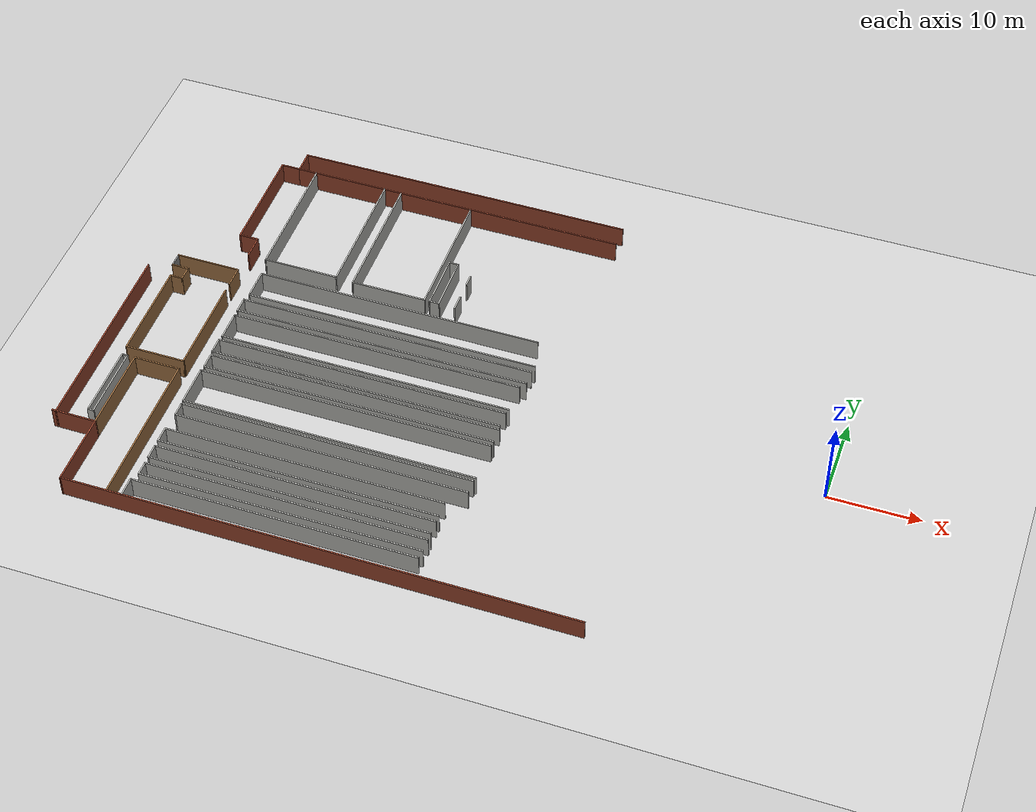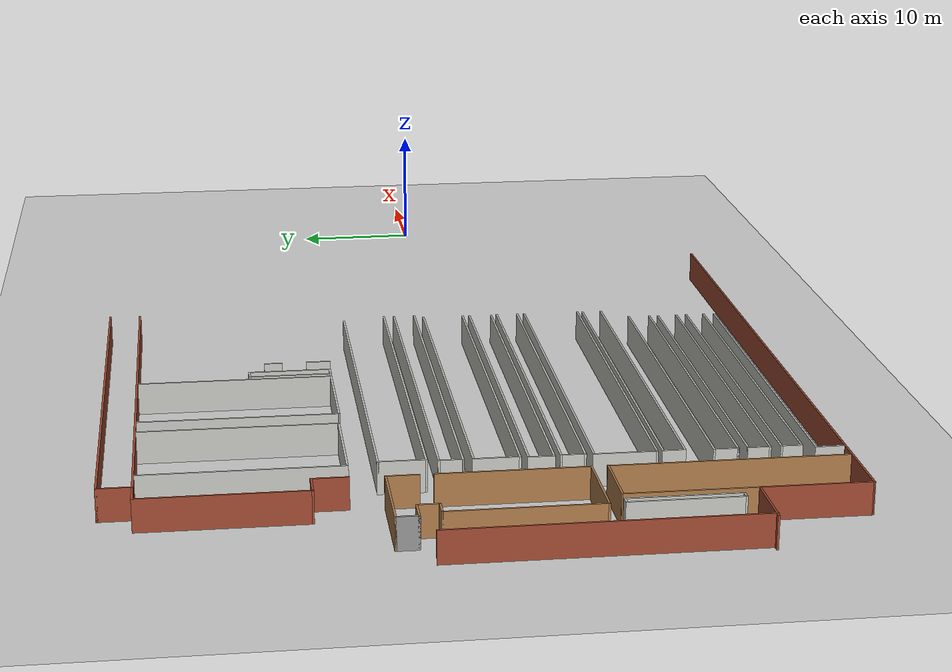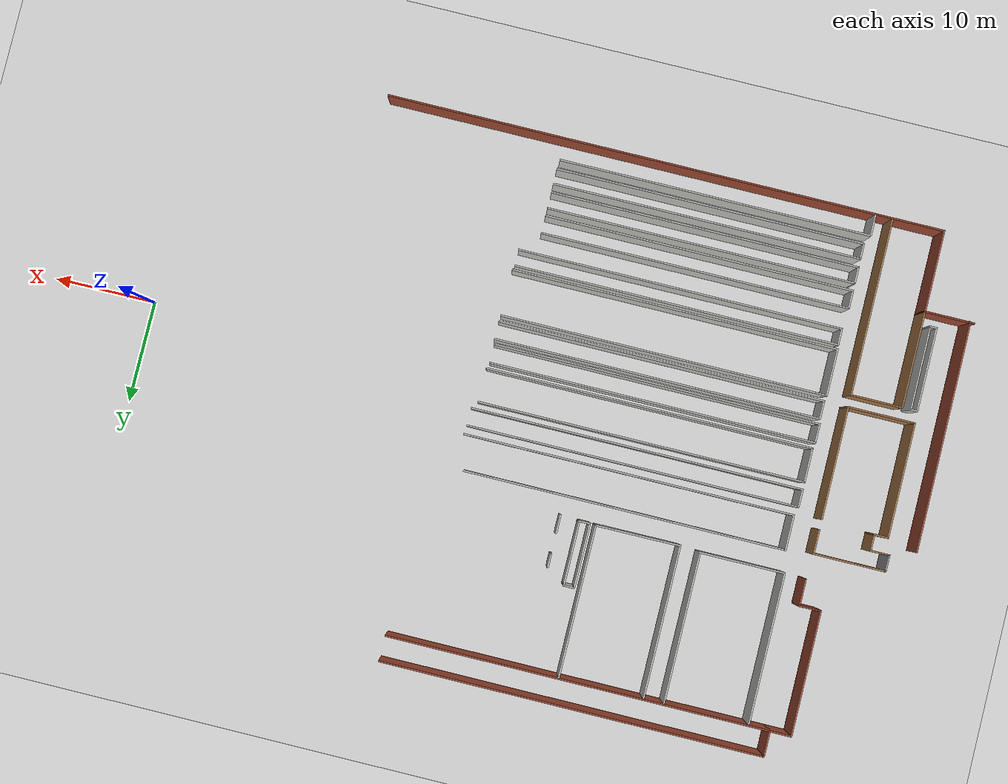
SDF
<sdf version="1.6">
 <world name="default">
  <model name="ground_plane">
   <static>1</static>
   <link name="link">
    <collision name="collision">
     <geometry><plane><normal>0 0 1</normal><size>100 100</size></plane></geometry>
     <surface><friction><ode><mu>100</mu><mu2>50</mu2></ode></friction></surface>
    </collision>
    <visual name="visual">
     <cast_shadows>0</cast_shadows>
     <geometry><plane><normal>0 0 1</normal><size>100 100</size></plane></geometry>
     <material>
      <script><uri>file://media/materials/scripts/gazebo.material</uri><name>Gazebo/Grey</name></script>
     </material>
    </visual>
   </link>
  </model>
  <model name="jeonju-2023">
   <pose>-5.65351 1.61412 0 0 -0 0</pose>
   <link name="Wall_100">
    <collision name="Wall_100_Collision">
     <geometry><box><size>12.429 0.15 2.5</size></box></geometry>
     <pose>0 0 1.25 0 -0 0</pose>
    </collision>
    <visual name="Wall_100_Visual">
     <pose>0 0 1.25 0 -0 0</pose>
     <geometry><box><size>12.429 0.15 2.5</size></box></geometry>
     <material>
      <script><uri>file://media/materials/scripts/gazebo.material</uri><name>Gazebo/Bricks</name></script>
      <ambient>1 1 1 1</ambient>
     </material>
    </visual>
    <pose>-64.7065 18.131 0 0 -0 1.5708</pose>
   </link>
   <link name="Wall_101">
    <collision name="Wall_101_Collision">
     <geometry><box><size>2.25 0.15 2.5</size></box></geometry>
     <pose>0 0 1.25 0 -0 0</pose>
    </collision>
    <visual name="Wall_101_Visual">
     <pose>0 0 1.25 0 -0 0</pose>
     <geometry><box><size>2.25 0.15 2.5</size></box></geometry>
     <material>
      <script><uri>file://media/materials/scripts/gazebo.material</uri><name>Gazebo/Bricks</name></script>
      <ambient>1 1 1 1</ambient>
     </material>
    </visual>
    <pose>-63.6565 24.2705 0 0 -0 0</pose>
   </link>
   <link name="Wall_102">
    <collision name="Wall_102_Collision">
     <geometry><box><size>2.65 0.15 2.5</size></box></geometry>
     <pose>0 0 1.25 0 -0 0</pose>
    </collision>
    <visual name="Wall_102_Visual">
     <pose>0 0 1.25 0 -0 0</pose>
     <geometry><box><size>2.65 0.15 2.5</size></box></geometry>
     <material>
      <script><uri>file://media/materials/scripts/gazebo.material</uri><name>Gazebo/Bricks</name></script>
      <ambient>1 1 1 1</ambient>
     </material>
    </visual>
    <pose>-62.6065 25.5205 0 0 -0 1.5708</pose>
   </link>
   <link name="Wall_103">
    <collision name="Wall_103_Collision">
     <geometry><box><size>38.041 0.15 2.5</size></box></geometry>
     <pose>0 0 1.25 0 -0 0</pose>
    </collision>
    <visual name="Wall_103_Visual">
     <pose>0 0 1.25 0 -0 0</pose>
     <geometry><box><size>38.041 0.15 2.5</size></box></geometry>
     <material>
      <script><uri>file://media/materials/scripts/gazebo.material</uri><name>Gazebo/Bricks</name></script>
      <ambient>1 1 1 1</ambient>
     </material>
    </visual>
    <pose>-43.661 26.7705 0 0 -0 0</pose>
   </link>
   <link name="Wall_137">
    <collision name="Wall_137_Collision">
     <geometry><box><size>7.25 0.15 2.5</size></box></geometry>
     <pose>0 0 1.25 0 -0 0</pose>
    </collision>
    <visual name="Wall_137_Visual">
     <pose>0 0 1.25 0 -0 0</pose>
     <geometry><box><size>7.25 0.15 2.5</size></box></geometry>
     <material>
      <script><uri>file://media/materials/scripts/gazebo.material</uri><name>Gazebo/Wood</name></script>
      <ambient>1 1 1 1</ambient>
     </material>
    </visual>
    <pose>-66.3255 6.8155 0 0 -0 3.14159</pose>
   </link>
   <link name="Wall_138">
    <collision name="Wall_138_Collision">
     <geometry><box><size>1.75 0.15 2.5</size></box></geometry>
     <pose>0 0 1.25 0 -0 0</pose>
    </collision>
    <visual name="Wall_138_Visual">
     <pose>0 0 1.25 0 -0 0</pose>
     <geometry><box><size>1.75 0.15 2.5</size></box></geometry>
     <material>
      <script><uri>file://media/materials/scripts/gazebo.material</uri><name>Gazebo/Grey</name></script>
      <ambient>1 1 1 1</ambient>
     </material>
    </visual>
    <pose>-69.8755 6.0155 0 0 0 -1.5708</pose>
   </link>
   <link name="Wall_139">
    <collision name="Wall_139_Collision">
     <geometry><box><size>2 0.15 2.5</size></box></geometry>
     <pose>0 0 1.25 0 -0 0</pose>
    </collision>
    <visual name="Wall_139_Visual">
     <pose>0 0 1.25 0 -0 0</pose>
     <geometry><box><size>2 0.15 2.5</size></box></geometry>
     <material>
      <script><uri>file://media/materials/scripts/gazebo.material</uri><name>Gazebo/Wood</name></script>
      <ambient>1 1 1 1</ambient>
     </material>
    </visual>
    <pose>-68.9505 5.2155 0 0 -0 0</pose>
   </link>
   <link name="Wall_140">
    <collision name="Wall_140_Collision">
     <geometry><box><size>1.75 0.15 2.5</size></box></geometry>
     <pose>0 0 1.25 0 -0 0</pose>
    </collision>
    <visual name="Wall_140_Visual">
     <pose>0 0 1.25 0 -0 0</pose>
     <geometry><box><size>1.75 0.15 2.5</size></box></geometry>
     <material>
      <script><uri>file://media/materials/scripts/gazebo.material</uri><name>Gazebo/Wood</name></script>
      <ambient>1 1 1 1</ambient>
     </material>
    </visual>
    <pose>-68.0255 4.4155 0 0 0 -1.5708</pose>
   </link>
   <link name="Wall_141">
    <collision name="Wall_141_Collision">
     <geometry><box><size>1.508 0.15 2.5</size></box></geometry>
     <pose>0 0 1.25 0 -0 0</pose>
    </collision>
    <visual name="Wall_141_Visual">
     <pose>0 0 1.25 0 -0 0</pose>
     <geometry><box><size>1.508 0.15 2.5</size></box></geometry>
     <material>
      <script><uri>file://media/materials/scripts/gazebo.material</uri><name>Gazebo/Wood</name></script>
      <ambient>1 1 1 1</ambient>
     </material>
    </visual>
    <pose>-68.7045 3.6155 0 0 -0 3.14159</pose>
   </link>
   <link name="Wall_142">
    <collision name="Wall_142_Collision">
     <geometry><box><size>11.5 0.15 2.5</size></box></geometry>
     <pose>0 0 1.25 0 -0 0</pose>
    </collision>
    <visual name="Wall_142_Visual">
     <pose>0 0 1.25 0 -0 0</pose>
     <geometry><box><size>11.5 0.15 2.5</size></box></geometry>
     <material>
      <script><uri>file://media/materials/scripts/gazebo.material</uri><name>Gazebo/Wood</name></script>
      <ambient>1 1 1 1</ambient>
     </material>
    </visual>
    <pose>-69.379 -2.0595 0 0 0 -1.57</pose>
   </link>
   <link name="Wall_143">
    <collision name="Wall_143_Collision">
     <geometry><box><size>6.75 0.15 2.5</size></box></geometry>
     <pose>0 0 1.25 0 -0 0</pose>
    </collision>
    <visual name="Wall_143_Visual">
     <pose>0 0 1.25 0 -0 0</pose>
     <geometry><box><size>6.75 0.15 2.5</size></box></geometry>
     <material>
      <script><uri>file://media/materials/scripts/gazebo.material</uri><name>Gazebo/Wood</name></script>
      <ambient>1 1 1 1</ambient>
     </material>
    </visual>
    <pose>-66.075 -7.7345 0 0 -0 0</pose>
   </link>
   <link name="Wall_144">
    <collision name="Wall_144_Collision">
     <geometry><box><size>11.25 0.15 2.5</size></box></geometry>
     <pose>0 0 1.25 0 -0 0</pose>
    </collision>
    <visual name="Wall_144_Visual">
     <pose>0 0 1.25 0 -0 0</pose>
     <geometry><box><size>11.25 0.15 2.5</size></box></geometry>
     <material>
      <script><uri>file://media/materials/scripts/gazebo.material</uri><name>Gazebo/Wood</name></script>
      <ambient>1 1 1 1</ambient>
     </material>
    </visual>
    <pose>-62.7755 -2.1845 0 0 -0 1.5708</pose>
   </link>
   <link name="Wall_146">
    <collision name="Wall_146_Collision">
     <geometry><box><size>9.75 0.15 2.5</size></box></geometry>
     <pose>0 0 1.25 0 -0 0</pose>
    </collision>
    <visual name="Wall_146_Visual">
     <pose>0 0 1.25 0 -0 0</pose>
     <geometry><box><size>9.75 0.15 2.5</size></box></geometry>
     <material>
      <script><uri>file://media/materials/scripts/gazebo.material</uri><name>Gazebo/Wood</name></script>
      <ambient>1 1 1 1</ambient>
     </material>
    </visual>
    <pose>-67.871 -13.7295 0 0 -0 1.56965</pose>
   </link>
   <link name="Wall_147">
    <collision name="Wall_147_Collision">
     <geometry><box><size>5.24 0.15 2.5</size></box></geometry>
     <pose>0 0 1.25 0 -0 0</pose>
    </collision>
    <visual name="Wall_147_Visual">
     <pose>0 0 1.25 0 -0 0</pose>
     <geometry><box><size>5.24 0.15 2.5</size></box></geometry>
     <material>
      <script><uri>file://media/materials/scripts/gazebo.material</uri><name>Gazebo/Wood</name></script>
      <ambient>1 1 1 1</ambient>
     </material>
    </visual>
    <pose>-65.3205 -8.9295 0 0 -0 0</pose>
   </link>
   <link name="Wall_149">
    <collision name="Wall_149_Collision">
     <geometry><box><size>17.75 0.15 2.5</size></box></geometry>
     <pose>0 0 1.25 0 -0 0</pose>
    </collision>
    <visual name="Wall_149_Visual">
     <pose>0 0 1.25 0 -0 0</pose>
     <geometry><box><size>17.75 0.15 2.5</size></box></geometry>
     <material>
      <script><uri>file://media/materials/scripts/gazebo.material</uri><name>Gazebo/Wood</name></script>
      <ambient>1 1 1 1</ambient>
     </material>
    </visual>
    <pose>-62.7755 -17.7295 0 0 0 -1.5708</pose>
   </link>
   <link name="Wall_151">
    <collision name="Wall_151_Collision">
     <geometry><box><size>15.117 0.15 2.5</size></box></geometry>
     <pose>0 0 1.25 0 -0 0</pose>
    </collision>
    <visual name="Wall_151_Visual">
     <pose>0 0 1.25 0 -0 0</pose>
     <geometry><box><size>15.117 0.15 2.5</size></box></geometry>
     <material>
      <script><uri>file://media/materials/scripts/gazebo.material</uri><name>Gazebo/CeilingTiled</name></script>
      <ambient>0.435294 0.796078 0.67451 1</ambient>
     </material>
    </visual>
    <pose>-60.5085 16.787 0 0 0 -1.5708</pose>
   </link>
   <link name="Wall_152">
    <collision name="Wall_152_Collision">
     <geometry><box><size>8.5 0.15 2.5</size></box></geometry>
     <pose>0 0 1.25 0 -0 0</pose>
    </collision>
    <visual name="Wall_152_Visual">
     <pose>0 0 1.25 0 -0 0</pose>
     <geometry><box><size>8.5 0.15 2.5</size></box></geometry>
     <material>
      <script><uri>file://media/materials/scripts/gazebo.material</uri><name>Gazebo/CeilingTiled</name></script>
      <ambient>0.435294 0.796078 0.67451 1</ambient>
     </material>
    </visual>
    <pose>-56.3335 9.3035 0 0 -0 0</pose>
   </link>
   <link name="Wall_153">
    <collision name="Wall_153_Collision">
     <geometry><box><size>15.117 0.15 2.5</size></box></geometry>
     <pose>0 0 1.25 0 -0 0</pose>
    </collision>
    <visual name="Wall_153_Visual">
     <pose>0 0 1.25 0 -0 0</pose>
     <geometry><box><size>15.117 0.15 2.5</size></box></geometry>
     <material>
      <script><uri>file://media/materials/scripts/gazebo.material</uri><name>Gazebo/CeilingTiled</name></script>
      <ambient>0.435294 0.796078 0.67451 1</ambient>
     </material>
    </visual>
    <pose>-52.1585 16.787 0 0 -0 1.5708</pose>
   </link>
   <link name="Wall_155">
    <collision name="Wall_155_Collision">
     <geometry><box><size>15.286 0.15 2.5</size></box></geometry>
     <pose>0 0 1.25 0 -0 0</pose>
    </collision>
    <visual name="Wall_155_Visual">
     <pose>0 0 1.25 0 -0 0</pose>
     <geometry><box><size>15.286 0.15 2.5</size></box></geometry>
     <material>
      <script><uri>file://media/materials/scripts/gazebo.material</uri><name>Gazebo/CeilingTiled</name></script>
      <ambient>0.435294 0.796078 0.67451 1</ambient>
     </material>
    </visual>
    <pose>-50.1515 16.7025 0 0 0 -1.5708</pose>
   </link>
   <link name="Wall_156">
    <collision name="Wall_156_Collision">
     <geometry><box><size>8.5 0.15 2.5</size></box></geometry>
     <pose>0 0 1.25 0 -0 0</pose>
    </collision>
    <visual name="Wall_156_Visual">
     <pose>0 0 1.25 0 -0 0</pose>
     <geometry><box><size>8.5 0.15 2.5</size></box></geometry>
     <material>
      <script><uri>file://media/materials/scripts/gazebo.material</uri><name>Gazebo/CeilingTiled</name></script>
      <ambient>0.435294 0.796078 0.67451 1</ambient>
     </material>
    </visual>
    <pose>-45.9765 9.152 0 0 -0 0.004192</pose>
   </link>
   <link name="Wall_157">
    <collision name="Wall_157_Collision">
     <geometry><box><size>15.251 0.15 2.5</size></box></geometry>
     <pose>0 0 1.25 0 -0 0</pose>
    </collision>
    <visual name="Wall_157_Visual">
     <pose>0 0 1.25 0 -0 0</pose>
     <geometry><box><size>15.251 0.15 2.5</size></box></geometry>
     <material>
      <script><uri>file://media/materials/scripts/gazebo.material</uri><name>Gazebo/CeilingTiled</name></script>
      <ambient>0.435294 0.796078 0.67451 1</ambient>
     </material>
    </visual>
    <pose>-41.8015 16.72 0 0 -0 1.5708</pose>
   </link>
   <link name="Wall_159">
    <collision name="Wall_159_Collision">
     <geometry><box><size>1.18547 0.15 2.5</size></box></geometry>
     <pose>0 0 1.25 0 -0 0</pose>
    </collision>
    <visual name="Wall_159_Visual">
     <pose>0 0 1.25 0 -0 0</pose>
     <geometry><box><size>1.18547 0.15 2.5</size></box></geometry>
     <material>
      <script><uri>file://media/materials/scripts/gazebo.material</uri><name>Gazebo/CeilingTiled</name></script>
      <ambient>0.435294 0.796078 0.67451 1</ambient>
     </material>
    </visual>
    <pose>-40.693 15.5025 0 0 -0 0</pose>
   </link>
   <link name="Wall_160">
    <collision name="Wall_160_Collision">
     <geometry><box><size>6.5 0.15 2.5</size></box></geometry>
     <pose>0 0 1.25 0 -0 0</pose>
    </collision>
    <visual name="Wall_160_Visual">
     <pose>0 0 1.25 0 -0 0</pose>
     <geometry><box><size>6.5 0.15 2.5</size></box></geometry>
     <material>
      <script><uri>file://media/materials/scripts/gazebo.material</uri><name>Gazebo/CeilingTiled</name></script>
      <ambient>0.435294 0.796078 0.67451 1</ambient>
     </material>
    </visual>
    <pose>-40.1755 12.3275 0 0 0 -1.5708</pose>
   </link>
   <link name="Wall_161">
    <collision name="Wall_161_Collision">
     <geometry><box><size>1.18547 0.15 2.5</size></box></geometry>
     <pose>0 0 1.25 0 -0 0</pose>
    </collision>
    <visual name="Wall_161_Visual">
     <pose>0 0 1.25 0 -0 0</pose>
     <geometry><box><size>1.18547 0.15 2.5</size></box></geometry>
     <material>
      <script><uri>file://media/materials/scripts/gazebo.material</uri><name>Gazebo/CeilingTiled</name></script>
      <ambient>0.435294 0.796078 0.67451 1</ambient>
     </material>
    </visual>
    <pose>-40.693 9.1525 0 0 -0 3.14159</pose>
   </link>
   <link name="Wall_162">
    <collision name="Wall_162_Collision">
     <geometry><box><size>6.5 0.15 2.5</size></box></geometry>
     <pose>0 0 1.25 0 -0 0</pose>
    </collision>
    <visual name="Wall_162_Visual">
     <pose>0 0 1.25 0 -0 0</pose>
     <geometry><box><size>6.5 0.15 2.5</size></box></geometry>
     <material>
      <script><uri>file://media/materials/scripts/gazebo.material</uri><name>Gazebo/CeilingTiled</name></script>
      <ambient>0.435294 0.796078 0.67451 1</ambient>
     </material>
    </visual>
    <pose>-41.2105 12.3275 0 0 -0 1.5708</pose>
   </link>
   <link name="Wall_170">
    <collision name="Wall_170_Collision">
     <geometry><box><size>1.41766 0.15 2.5</size></box></geometry>
     <pose>0 0 1.25 0 -0 0</pose>
    </collision>
    <visual name="Wall_170_Visual">
     <pose>0 0 1.25 0 -0 0</pose>
     <geometry><box><size>1.41766 0.15 2.5</size></box></geometry>
     <material>
      <script><uri>file://media/materials/scripts/gazebo.material</uri><name>Gazebo/CeilingTiled</name></script>
      <ambient>0.435294 0.796078 0.67451 1</ambient>
     </material>
    </visual>
    <pose>-38.2755 13.534 0 0 -0 1.5708</pose>
   </link>
   <link name="Wall_172">
    <collision name="Wall_172_Collision">
     <geometry><box><size>1.89284 0.15 2.5</size></box></geometry>
     <pose>0 0 1.25 0 -0 0</pose>
    </collision>
    <visual name="Wall_172_Visual">
     <pose>0 0 1.25 0 -0 0</pose>
     <geometry><box><size>1.89284 0.15 2.5</size></box></geometry>
     <material>
      <script><uri>file://media/materials/scripts/gazebo.material</uri><name>Gazebo/CeilingTiled</name></script>
      <ambient>0.435294 0.796078 0.67451 1</ambient>
     </material>
    </visual>
    <pose>-38.2755 9.942 0 0 0 -1.5708</pose>
   </link>
   <link name="Wall_177">
    <collision name="Wall_177_Collision">
     <geometry><box><size>32 0.15 2.5</size></box></geometry>
     <pose>0 0 1.25 0 -0 0</pose>
    </collision>
    <visual name="Wall_177_Visual">
     <pose>0 0 1.25 0 -0 0</pose>
     <geometry><box><size>32 0.15 2.5</size></box></geometry>
     <material>
      <script><uri>file://media/materials/scripts/gazebo.material</uri><name>Gazebo/CeilingTiled</name></script>
      <ambient>0.760784 0.662745 0.627451 1</ambient>
     </material>
    </visual>
    <pose>-44.1505 7.1215 0 0 -0 0</pose>
   </link>
   <link name="Wall_181">
    <collision name="Wall_181_Collision">
     <geometry><box><size>32.85 0.15 2.5</size></box></geometry>
     <pose>0 0 1.25 0 -0 0</pose>
    </collision>
    <visual name="Wall_181_Visual">
     <pose>0 0 1.25 0 -0 0</pose>
     <geometry><box><size>32.85 0.15 2.5</size></box></geometry>
     <material>
      <script><uri>file://media/materials/scripts/gazebo.material</uri><name>Gazebo/CeilingTiled</name></script>
      <ambient>0.760784 0.662745 0.627451 1</ambient>
     </material>
    </visual>
    <pose>-43.7255 3.6715 0 0 -0 3.14159</pose>
   </link>
   <link name="Wall_182">
    <collision name="Wall_182_Collision">
     <geometry><box><size>3.6 0.15 2.5</size></box></geometry>
     <pose>0 0 1.25 0 -0 0</pose>
    </collision>
    <visual name="Wall_182_Visual">
     <pose>0 0 1.25 0 -0 0</pose>
     <geometry><box><size>3.6 0.15 2.5</size></box></geometry>
     <material>
      <script><uri>file://media/materials/scripts/gazebo.material</uri><name>Gazebo/CeilingTiled</name></script>
      <ambient>0.760784 0.662745 0.627451 1</ambient>
     </material>
    </visual>
    <pose>-60.0755 5.3965 0 0 -0 1.5708</pose>
   </link>
   <link name="Wall_184">
    <collision name="Wall_184_Collision">
     <geometry><box><size>32.9884 0.15 2.5</size></box></geometry>
     <pose>0 0 1.25 0 -0 0</pose>
    </collision>
    <visual name="Wall_184_Visual">
     <pose>0 0 1.25 0 -0 0</pose>
     <geometry><box><size>32.9884 0.15 2.5</size></box></geometry>
     <material>
      <script><uri>file://media/materials/scripts/gazebo.material</uri><name>Gazebo/CeilingTiled</name></script>
      <ambient>0.760784 0.662745 0.627451 1</ambient>
     </material>
    </visual>
    <pose>-43.9095 2.8005 0 0 -0 0</pose>
   </link>
   <link name="Wall_186">
    <collision name="Wall_186_Collision">
     <geometry><box><size>33 0.15 2.5</size></box></geometry>
     <pose>0 0 1.25 0 -0 0</pose>
    </collision>
    <visual name="Wall_186_Visual">
     <pose>0 0 1.25 0 -0 0</pose>
     <geometry><box><size>33 0.15 2.5</size></box></geometry>
     <material>
      <script><uri>file://media/materials/scripts/gazebo.material</uri><name>Gazebo/CeilingTiled</name></script>
      <ambient>0.760784 0.662745 0.627451 1</ambient>
     </material>
    </visual>
    <pose>-43.9085 1.0705 0 0 -0 3.14159</pose>
   </link>
   <link name="Wall_187">
    <collision name="Wall_187_Collision">
     <geometry><box><size>1.88016 0.15 2.5</size></box></geometry>
     <pose>0 0 1.25 0 -0 0</pose>
    </collision>
    <visual name="Wall_187_Visual">
     <pose>0 0 1.25 0 -0 0</pose>
     <geometry><box><size>1.88016 0.15 2.5</size></box></geometry>
     <material>
      <script><uri>file://media/materials/scripts/gazebo.material</uri><name>Gazebo/CeilingTiled</name></script>
      <ambient>0.760784 0.662745 0.627451 1</ambient>
     </material>
    </visual>
    <pose>-60.331 1.9355 0 0 -0 1.56791</pose>
   </link>
   <link name="Wall_189">
    <collision name="Wall_189_Collision">
     <geometry><box><size>32.5 0.15 2.5</size></box></geometry>
     <pose>0 0 1.25 0 -0 0</pose>
    </collision>
    <visual name="Wall_189_Visual">
     <pose>0 0 1.25 0 -0 0</pose>
     <geometry><box><size>32.5 0.15 2.5</size></box></geometry>
     <material>
      <script><uri>file://media/materials/scripts/gazebo.material</uri><name>Gazebo/CeilingTiled</name></script>
      <ambient>0.760784 0.662745 0.627451 1</ambient>
     </material>
    </visual>
    <pose>-44.1615 0.3265 0 0 -0 0</pose>
   </link>
   <link name="Wall_191">
    <collision name="Wall_191_Collision">
     <geometry><box><size>32.5 0.15 2.5</size></box></geometry>
     <pose>0 0 1.25 0 -0 0</pose>
    </collision>
    <visual name="Wall_191_Visual">
     <pose>0 0 1.25 0 -0 0</pose>
     <geometry><box><size>32.5 0.15 2.5</size></box></geometry>
     <material>
      <script><uri>file://media/materials/scripts/gazebo.material</uri><name>Gazebo/CeilingTiled</name></script>
      <ambient>0.760784 0.662745 0.627451 1</ambient>
     </material>
    </visual>
    <pose>-44.1615 -3.0235 0 0 -0 3.14159</pose>
   </link>
   <link name="Wall_192">
    <collision name="Wall_192_Collision">
     <geometry><box><size>3.5 0.15 2.5</size></box></geometry>
     <pose>0 0 1.25 0 -0 0</pose>
    </collision>
    <visual name="Wall_192_Visual">
     <pose>0 0 1.25 0 -0 0</pose>
     <geometry><box><size>3.5 0.15 2.5</size></box></geometry>
     <material>
      <script><uri>file://media/materials/scripts/gazebo.material</uri><name>Gazebo/CeilingTiled</name></script>
      <ambient>0.760784 0.662745 0.627451 1</ambient>
     </material>
    </visual>
    <pose>-60.3365 -1.3485 0 0 -0 1.5708</pose>
   </link>
   <link name="Wall_194">
    <collision name="Wall_194_Collision">
     <geometry><box><size>32.4428 0.15 2.5</size></box></geometry>
     <pose>0 0 1.25 0 -0 0</pose>
    </collision>
    <visual name="Wall_194_Visual">
     <pose>0 0 1.25 0 -0 0</pose>
     <geometry><box><size>32.4428 0.15 2.5</size></box></geometry>
     <material>
      <script><uri>file://media/materials/scripts/gazebo.material</uri><name>Gazebo/CeilingTiled</name></script>
      <ambient>0.760784 0.662745 0.627451 1</ambient>
     </material>
    </visual>
    <pose>-44.322 -3.6115 0 0 -0 0</pose>
   </link>
   <link name="Wall_196">
    <collision name="Wall_196_Collision">
     <geometry><box><size>32.4428 0.15 2.5</size></box></geometry>
     <pose>0 0 1.25 0 -0 0</pose>
    </collision>
    <visual name="Wall_196_Visual">
     <pose>0 0 1.25 0 -0 0</pose>
     <geometry><box><size>32.4428 0.15 2.5</size></box></geometry>
     <material>
      <script><uri>file://media/materials/scripts/gazebo.material</uri><name>Gazebo/CeilingTiled</name></script>
      <ambient>0.760784 0.662745 0.627451 1</ambient>
     </material>
    </visual>
    <pose>-44.322 -5.4615 0 0 -0 3.14159</pose>
   </link>
   <link name="Wall_197">
    <collision name="Wall_197_Collision">
     <geometry><box><size>2 0.15 2.5</size></box></geometry>
     <pose>0 0 1.25 0 -0 0</pose>
    </collision>
    <visual name="Wall_197_Visual">
     <pose>0 0 1.25 0 -0 0</pose>
     <geometry><box><size>2 0.15 2.5</size></box></geometry>
     <material>
      <script><uri>file://media/materials/scripts/gazebo.material</uri><name>Gazebo/CeilingTiled</name></script>
      <ambient>0.760784 0.662745 0.627451 1</ambient>
     </material>
    </visual>
    <pose>-60.4685 -4.5365 0 0 -0 1.5708</pose>
   </link>
   <link name="Wall_199">
    <collision name="Wall_199_Collision">
     <geometry><box><size>32.45 0.15 2.5</size></box></geometry>
     <pose>0 0 1.25 0 -0 0</pose>
    </collision>
    <visual name="Wall_199_Visual">
     <pose>0 0 1.25 0 -0 0</pose>
     <geometry><box><size>32.45 0.15 2.5</size></box></geometry>
     <material>
      <script><uri>file://media/materials/scripts/gazebo.material</uri><name>Gazebo/CeilingTiled</name></script>
      <ambient>0.760784 0.662745 0.627451 1</ambient>
     </material>
    </visual>
    <pose>-44.2255 -5.9715 0 0 -0 0</pose>
   </link>
   <link name="Wall_201">
    <collision name="Wall_201_Collision">
     <geometry><box><size>32.45 0.15 2.5</size></box></geometry>
     <pose>0 0 1.25 0 -0 0</pose>
    </collision>
    <visual name="Wall_201_Visual">
     <pose>0 0 1.25 0 -0 0</pose>
     <geometry><box><size>32.45 0.15 2.5</size></box></geometry>
     <material>
      <script><uri>file://media/materials/scripts/gazebo.material</uri><name>Gazebo/CeilingTiled</name></script>
      <ambient>0.760784 0.662745 0.627451 1</ambient>
     </material>
    </visual>
    <pose>-44.2255 -7.7295 0 0 -0 3.14159</pose>
   </link>
   <link name="Wall_202">
    <collision name="Wall_202_Collision">
     <geometry><box><size>1.908 0.15 2.5</size></box></geometry>
     <pose>0 0 1.25 0 -0 0</pose>
    </collision>
    <visual name="Wall_202_Visual">
     <pose>0 0 1.25 0 -0 0</pose>
     <geometry><box><size>1.908 0.15 2.5</size></box></geometry>
     <material>
      <script><uri>file://media/materials/scripts/gazebo.material</uri><name>Gazebo/CeilingTiled</name></script>
      <ambient>0.760784 0.662745 0.627451 1</ambient>
     </material>
    </visual>
    <pose>-60.3755 -6.8505 0 0 -0 1.5708</pose>
   </link>
   <link name="Wall_204">
    <collision name="Wall_204_Collision">
     <geometry><box><size>32.5 0.15 2.5</size></box></geometry>
     <pose>0 0 1.25 0 -0 0</pose>
    </collision>
    <visual name="Wall_204_Visual">
     <pose>0 0 1.25 0 -0 0</pose>
     <geometry><box><size>32.5 0.15 2.5</size></box></geometry>
     <material>
      <script><uri>file://media/materials/scripts/gazebo.material</uri><name>Gazebo/CeilingTiled</name></script>
      <ambient>0.760784 0.662745 0.627451 1</ambient>
     </material>
    </visual>
    <pose>-44.3165 -8.3305 0 0 -0 0</pose>
   </link>
   <link name="Wall_206">
    <collision name="Wall_206_Collision">
     <geometry><box><size>32.5 0.15 2.5</size></box></geometry>
     <pose>0 0 1.25 0 -0 0</pose>
    </collision>
    <visual name="Wall_206_Visual">
     <pose>0 0 1.25 0 -0 0</pose>
     <geometry><box><size>32.5 0.15 2.5</size></box></geometry>
     <material>
      <script><uri>file://media/materials/scripts/gazebo.material</uri><name>Gazebo/CeilingTiled</name></script>
      <ambient>0.760784 0.662745 0.627451 1</ambient>
     </material>
    </visual>
    <pose>-44.3165 -12.9305 0 0 -0 3.14159</pose>
   </link>
   <link name="Wall_207">
    <collision name="Wall_207_Collision">
     <geometry><box><size>4.75 0.15 2.5</size></box></geometry>
     <pose>0 0 1.25 0 -0 0</pose>
    </collision>
    <visual name="Wall_207_Visual">
     <pose>0 0 1.25 0 -0 0</pose>
     <geometry><box><size>4.75 0.15 2.5</size></box></geometry>
     <material>
      <script><uri>file://media/materials/scripts/gazebo.material</uri><name>Gazebo/CeilingTiled</name></script>
      <ambient>0.760784 0.662745 0.627451 1</ambient>
     </material>
    </visual>
    <pose>-60.4915 -10.6305 0 0 -0 1.5708</pose>
   </link>
   <link name="Wall_209">
    <collision name="Wall_209_Collision">
     <geometry><box><size>32.3139 0.15 2.5</size></box></geometry>
     <pose>0 0 1.25 0 -0 0</pose>
    </collision>
    <visual name="Wall_209_Visual">
     <pose>0 0 1.25 0 -0 0</pose>
     <geometry><box><size>32.3139 0.15 2.5</size></box></geometry>
     <material>
      <script><uri>file://media/materials/scripts/gazebo.material</uri><name>Gazebo/CeilingTiled</name></script>
      <ambient>0.760784 0.662745 0.627451 1</ambient>
     </material>
    </visual>
    <pose>-44.3575 -13.3655 0 0 -0 0</pose>
   </link>
   <link name="Wall_211">
    <collision name="Wall_211_Collision">
     <geometry><box><size>32.3139 0.15 2.5</size></box></geometry>
     <pose>0 0 1.25 0 -0 0</pose>
    </collision>
    <visual name="Wall_211_Visual">
     <pose>0 0 1.25 0 -0 0</pose>
     <geometry><box><size>32.3139 0.15 2.5</size></box></geometry>
     <material>
      <script><uri>file://media/materials/scripts/gazebo.material</uri><name>Gazebo/CeilingTiled</name></script>
      <ambient>0.760784 0.662745 0.627451 1</ambient>
     </material>
    </visual>
    <pose>-44.3575 -14.9655 0 0 -0 3.14159</pose>
   </link>
   <link name="Wall_212">
    <collision name="Wall_212_Collision">
     <geometry><box><size>1.75 0.15 2.5</size></box></geometry>
     <pose>0 0 1.25 0 -0 0</pose>
    </collision>
    <visual name="Wall_212_Visual">
     <pose>0 0 1.25 0 -0 0</pose>
     <geometry><box><size>1.75 0.15 2.5</size></box></geometry>
     <material>
      <script><uri>file://media/materials/scripts/gazebo.material</uri><name>Gazebo/CeilingTiled</name></script>
      <ambient>0.760784 0.662745 0.627451 1</ambient>
     </material>
    </visual>
    <pose>-60.4395 -14.1655 0 0 -0 1.5708</pose>
   </link>
   <link name="Wall_214">
    <collision name="Wall_214_Collision">
     <geometry><box><size>30.75 0.15 2.5</size></box></geometry>
     <pose>0 0 1.25 0 -0 0</pose>
    </collision>
    <visual name="Wall_214_Visual">
     <pose>0 0 1.25 0 -0 0</pose>
     <geometry><box><size>30.75 0.15 2.5</size></box></geometry>
     <material>
      <script><uri>file://media/materials/scripts/gazebo.material</uri><name>Gazebo/CeilingTiled</name></script>
      <ambient>0.760784 0.662745 0.627451 1</ambient>
     </material>
    </visual>
    <pose>-45.3245 -17.0665 0 0 -0 0</pose>
   </link>
   <link name="Wall_216">
    <collision name="Wall_216_Collision">
     <geometry><box><size>30.75 0.15 2.5</size></box></geometry>
     <pose>0 0 1.25 0 -0 0</pose>
    </collision>
    <visual name="Wall_216_Visual">
     <pose>0 0 1.25 0 -0 0</pose>
     <geometry><box><size>30.75 0.15 2.5</size></box></geometry>
     <material>
      <script><uri>file://media/materials/scripts/gazebo.material</uri><name>Gazebo/CeilingTiled</name></script>
      <ambient>0.760784 0.662745 0.627451 1</ambient>
     </material>
    </visual>
    <pose>-45.3245 -18.8295 0 0 -0 3.14159</pose>
   </link>
   <link name="Wall_217">
    <collision name="Wall_217_Collision">
     <geometry><box><size>1.91271 0.15 2.5</size></box></geometry>
     <pose>0 0 1.25 0 -0 0</pose>
    </collision>
    <visual name="Wall_217_Visual">
     <pose>0 0 1.25 0 -0 0</pose>
     <geometry><box><size>1.91271 0.15 2.5</size></box></geometry>
     <material>
      <script><uri>file://media/materials/scripts/gazebo.material</uri><name>Gazebo/CeilingTiled</name></script>
      <ambient>0.760784 0.662745 0.627451 1</ambient>
     </material>
    </visual>
    <pose>-60.6245 -17.948 0 0 -0 1.5708</pose>
   </link>
   <link name="Wall_219">
    <collision name="Wall_219_Collision">
     <geometry><box><size>30.75 0.15 2.5</size></box></geometry>
     <pose>0 0 1.25 0 -0 0</pose>
    </collision>
    <visual name="Wall_219_Visual">
     <pose>0 0 1.25 0 -0 0</pose>
     <geometry><box><size>30.75 0.15 2.5</size></box></geometry>
     <material>
      <script><uri>file://media/materials/scripts/gazebo.material</uri><name>Gazebo/CeilingTiled</name></script>
      <ambient>0.760784 0.662745 0.627451 1</ambient>
     </material>
    </visual>
    <pose>-45.3275 -19.5775 0 0 -0 0</pose>
   </link>
   <link name="Wall_221">
    <collision name="Wall_221_Collision">
     <geometry><box><size>30.75 0.15 2.5</size></box></geometry>
     <pose>0 0 1.25 0 -0 0</pose>
    </collision>
    <visual name="Wall_221_Visual">
     <pose>0 0 1.25 0 -0 0</pose>
     <geometry><box><size>30.75 0.15 2.5</size></box></geometry>
     <material>
      <script><uri>file://media/materials/scripts/gazebo.material</uri><name>Gazebo/CeilingTiled</name></script>
      <ambient>0.760784 0.662745 0.627451 1</ambient>
     </material>
    </visual>
    <pose>-45.3275 -21.1775 0 0 -0 3.14159</pose>
   </link>
   <link name="Wall_222">
    <collision name="Wall_222_Collision">
     <geometry><box><size>1.75 0.15 2.5</size></box></geometry>
     <pose>0 0 1.25 0 -0 0</pose>
    </collision>
    <visual name="Wall_222_Visual">
     <pose>0 0 1.25 0 -0 0</pose>
     <geometry><box><size>1.75 0.15 2.5</size></box></geometry>
     <material>
      <script><uri>file://media/materials/scripts/gazebo.material</uri><name>Gazebo/CeilingTiled</name></script>
      <ambient>0.760784 0.662745 0.627451 1</ambient>
     </material>
    </visual>
    <pose>-60.6275 -20.3775 0 0 -0 1.5708</pose>
   </link>
   <link name="Wall_224">
    <collision name="Wall_224_Collision">
     <geometry><box><size>30.75 0.15 2.5</size></box></geometry>
     <pose>0 0 1.25 0 -0 0</pose>
    </collision>
    <visual name="Wall_224_Visual">
     <pose>0 0 1.25 0 -0 0</pose>
     <geometry><box><size>30.75 0.15 2.5</size></box></geometry>
     <material>
      <script><uri>file://media/materials/scripts/gazebo.material</uri><name>Gazebo/CeilingTiled</name></script>
      <ambient>0.760784 0.662745 0.627451 1</ambient>
     </material>
    </visual>
    <pose>-45.3045 -22.0295 0 0 -0 0</pose>
   </link>
   <link name="Wall_226">
    <collision name="Wall_226_Collision">
     <geometry><box><size>30.75 0.15 2.5</size></box></geometry>
     <pose>0 0 1.25 0 -0 0</pose>
    </collision>
    <visual name="Wall_226_Visual">
     <pose>0 0 1.25 0 -0 0</pose>
     <geometry><box><size>30.75 0.15 2.5</size></box></geometry>
     <material>
      <script><uri>file://media/materials/scripts/gazebo.material</uri><name>Gazebo/CeilingTiled</name></script>
      <ambient>0.760784 0.662745 0.627451 1</ambient>
     </material>
    </visual>
    <pose>-45.3045 -23.5295 0 0 -0 3.14159</pose>
   </link>
   <link name="Wall_227">
    <collision name="Wall_227_Collision">
     <geometry><box><size>1.64972 0.15 2.5</size></box></geometry>
     <pose>0 0 1.25 0 -0 0</pose>
    </collision>
    <visual name="Wall_227_Visual">
     <pose>0 0 1.25 0 -0 0</pose>
     <geometry><box><size>1.64972 0.15 2.5</size></box></geometry>
     <material>
      <script><uri>file://media/materials/scripts/gazebo.material</uri><name>Gazebo/CeilingTiled</name></script>
      <ambient>0.760784 0.662745 0.627451 1</ambient>
     </material>
    </visual>
    <pose>-60.6045 -22.7795 0 0 -0 1.5708</pose>
   </link>
   <link name="Wall_230">
    <collision name="Wall_230_Collision">
     <geometry><box><size>31.1307 0.15 2.5</size></box></geometry>
     <pose>0 0 1.25 0 -0 0</pose>
    </collision>
    <visual name="Wall_230_Visual">
     <pose>0 0 1.25 0 -0 0</pose>
     <geometry><box><size>31.1307 0.15 2.5</size></box></geometry>
     <material>
      <script><uri>file://media/materials/scripts/gazebo.material</uri><name>Gazebo/CeilingTiled</name></script>
      <ambient>0.760784 0.662745 0.627451 1</ambient>
     </material>
    </visual>
    <pose>-45.585 -24.4635 0 0 -0 3.14159</pose>
   </link>
   <link name="Wall_231">
    <collision name="Wall_231_Collision">
     <geometry><box><size>2.25 0.15 2.5</size></box></geometry>
     <pose>0 0 1.25 0 -0 0</pose>
    </collision>
    <visual name="Wall_231_Visual">
     <pose>0 0 1.25 0 -0 0</pose>
     <geometry><box><size>2.25 0.15 2.5</size></box></geometry>
     <material>
      <script><uri>file://media/materials/scripts/gazebo.material</uri><name>Gazebo/CeilingTiled</name></script>
      <ambient>0.760784 0.662745 0.627451 1</ambient>
     </material>
    </visual>
    <pose>-61.0755 -25.5135 0 0 0 -1.5708</pose>
   </link>
   <link name="Wall_233">
    <collision name="Wall_233_Collision">
     <geometry><box><size>8.44884 0.15 2.5</size></box></geometry>
     <pose>0 0 1.25 0 -0 0</pose>
    </collision>
    <visual name="Wall_233_Visual">
     <pose>0 0 1.25 0 -0 0</pose>
     <geometry><box><size>8.44884 0.15 2.5</size></box></geometry>
     <material>
      <script><uri>file://media/materials/scripts/gazebo.material</uri><name>Gazebo/CeilingTiled</name></script>
      <ambient>1 0.764706 0.305882 1</ambient>
     </material>
    </visual>
    <pose>-68.7215 -13.079 0 0 0 -1.5708</pose>
   </link>
   <link name="Wall_234">
    <collision name="Wall_234_Collision">
     <geometry><box><size>0.75 0.15 2.5</size></box></geometry>
     <pose>0 0 1.25 0 -0 0</pose>
    </collision>
    <visual name="Wall_234_Visual">
     <pose>0 0 1.25 0 -0 0</pose>
     <geometry><box><size>0.75 0.15 2.5</size></box></geometry>
     <material>
      <script><uri>file://media/materials/scripts/gazebo.material</uri><name>Gazebo/CeilingTiled</name></script>
      <ambient>1 0.764706 0.305882 1</ambient>
     </material>
    </visual>
    <pose>-69.0215 -17.2285 0 0 -0 3.14159</pose>
   </link>
   <link name="Wall_235">
    <collision name="Wall_235_Collision">
     <geometry><box><size>8.44884 0.15 2.5</size></box></geometry>
     <pose>0 0 1.25 0 -0 0</pose>
    </collision>
    <visual name="Wall_235_Visual">
     <pose>0 0 1.25 0 -0 0</pose>
     <geometry><box><size>8.44884 0.15 2.5</size></box></geometry>
     <material>
      <script><uri>file://media/materials/scripts/gazebo.material</uri><name>Gazebo/CeilingTiled</name></script>
      <ambient>1 0.764706 0.305882 1</ambient>
     </material>
    </visual>
    <pose>-69.3215 -13.079 0 0 -0 1.5708</pose>
   </link>
   <link name="Wall_236">
    <collision name="Wall_236_Collision">
     <geometry><box><size>0.75 0.15 2.5</size></box></geometry>
     <pose>0 0 1.25 0 -0 0</pose>
    </collision>
    <visual name="Wall_236_Visual">
     <pose>0 0 1.25 0 -0 0</pose>
     <geometry><box><size>0.75 0.15 2.5</size></box></geometry>
     <material>
      <script><uri>file://media/materials/scripts/gazebo.material</uri><name>Gazebo/CeilingTiled</name></script>
      <ambient>1 0.764706 0.305882 1</ambient>
     </material>
    </visual>
    <pose>-69.0215 -8.9295 0 0 -0 0</pose>
   </link>
   <link name="Wall_238">
    <collision name="Wall_238_Collision">
     <geometry><box><size>2.495 0.15 2.5</size></box></geometry>
     <pose>0 0 1.25 0 -0 0</pose>
    </collision>
    <visual name="Wall_238_Visual">
     <pose>0 0 1.25 0 -0 0</pose>
     <geometry><box><size>2.495 0.15 2.5</size></box></geometry>
     <material>
      <script><uri>file://media/materials/scripts/gazebo.material</uri><name>Gazebo/Wood</name></script>
      <ambient>1 1 1 1</ambient>
     </material>
    </visual>
    <pose>-62.7755 5.643 0 0 0 -1.5708</pose>
   </link>
   <link name="Wall_491">
    <collision name="Wall_491_Collision">
     <geometry><box><size>38 0.15 2.5</size></box></geometry>
     <pose>0 0 1.25 0 -0 0</pose>
    </collision>
    <visual name="Wall_491_Visual">
     <pose>0 0 1.25 0 -0 0</pose>
     <geometry><box><size>38 0.15 2.5</size></box></geometry>
     <material>
      <script><uri>file://media/materials/scripts/gazebo.material</uri><name>Gazebo/Bricks</name></script>
      <ambient>1 1 1 1</ambient>
     </material>
    </visual>
    <pose>-43.6815 24.2705 0 0 -0 0</pose>
   </link>
   <link name="Wall_92">
    <collision name="Wall_92_Collision">
     <geometry><box><size>55.768 0.15 2.5</size></box></geometry>
     <pose>0 0 1.25 0 -0 0</pose>
    </collision>
    <visual name="Wall_92_Visual">
     <pose>0 0 1.25 0 -0 0</pose>
     <geometry><box><size>55.768 0.15 2.5</size></box></geometry>
     <material>
      <script><uri>file://media/materials/scripts/gazebo.material</uri><name>Gazebo/Bricks</name></script>
      <ambient>1 1 1 1</ambient>
     </material>
    </visual>
    <pose>-40.0845 -26.6295 0 0 -0 3.14159</pose>
   </link>
   <link name="Wall_93">
    <collision name="Wall_93_Collision">
     <geometry><box><size>8.25 0.15 2.5</size></box></geometry>
     <pose>0 0 1.25 0 -0 0</pose>
    </collision>
    <visual name="Wall_93_Visual">
     <pose>0 0 1.25 0 -0 0</pose>
     <geometry><box><size>8.25 0.15 2.5</size></box></geometry>
     <material>
      <script><uri>file://media/materials/scripts/gazebo.material</uri><name>Gazebo/Bricks</name></script>
      <ambient>1 1 1 1</ambient>
     </material>
    </visual>
    <pose>-67.885 -22.5795 0 0 -0 1.5687</pose>
   </link>
   <link name="Wall_94">
    <collision name="Wall_94_Collision">
     <geometry><box><size>5.017 0.15 2.5</size></box></geometry>
     <pose>0 0 1.25 0 -0 0</pose>
    </collision>
    <visual name="Wall_94_Visual">
     <pose>0 0 1.25 0 -0 0</pose>
     <geometry><box><size>5.017 0.15 2.5</size></box></geometry>
     <material>
      <script><uri>file://media/materials/scripts/gazebo.material</uri><name>Gazebo/Bricks</name></script>
      <ambient>1 1 1 1</ambient>
     </material>
    </visual>
    <pose>-70.31 -18.5295 0 0 -0 3.14159</pose>
   </link>
   <link name="Wall_96">
    <collision name="Wall_96_Collision">
     <geometry><box><size>23 0.15 2.5</size></box></geometry>
     <pose>0 0 1.25 0 -0 0</pose>
    </collision>
    <visual name="Wall_96_Visual">
     <pose>0 0 1.25 0 -0 0</pose>
     <geometry><box><size>23 0.15 2.5</size></box></geometry>
     <material>
      <script><uri>file://media/materials/scripts/gazebo.material</uri><name>Gazebo/Bricks</name></script>
      <ambient>1 1 1 1</ambient>
     </material>
    </visual>
    <pose>-72.3675 -7.1425 0 0 -0 1.5708</pose>
   </link>
   <link name="Wall_98">
    <collision name="Wall_98_Collision">
     <geometry><box><size>2.75 0.15 2.5</size></box></geometry>
     <pose>0 0 1.25 0 -0 0</pose>
    </collision>
    <visual name="Wall_98_Visual">
     <pose>0 0 1.25 0 -0 0</pose>
     <geometry><box><size>2.75 0.15 2.5</size></box></geometry>
     <material>
      <script><uri>file://media/materials/scripts/gazebo.material</uri><name>Gazebo/Bricks</name></script>
      <ambient>1 1 1 1</ambient>
     </material>
    </visual>
    <pose>-62.6065 10.6915 0 0 -0 1.5708</pose>
   </link>
   <link name="Wall_99">
    <collision name="Wall_99_Collision">
     <geometry><box><size>2.25 0.15 2.5</size></box></geometry>
     <pose>0 0 1.25 0 -0 0</pose>
    </collision>
    <visual name="Wall_99_Visual">
     <pose>0 0 1.25 0 -0 0</pose>
     <geometry><box><size>2.25 0.15 2.5</size></box></geometry>
     <material>
      <script><uri>file://media/materials/scripts/gazebo.material</uri><name>Gazebo/Bricks</name></script>
      <ambient>1 1 1 1</ambient>
     </material>
    </visual>
    <pose>-63.6565 11.9915 0 0 -0 3.14159</pose>
   </link>
   <static>1</static>
  </model>
 </world>
</sdf>
